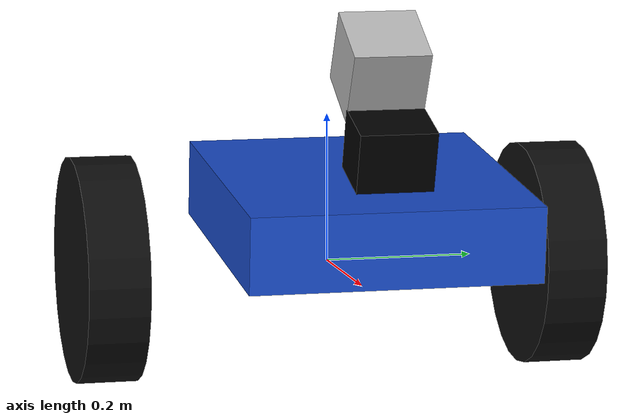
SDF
<?xml version="1.0" ?>
<sdf version="1.9">
  <model name="lane_following_robot">
    <link name="base_link">
      <pose>0 0 0.05 0 0 0</pose>
      <inertial>
        <mass>1.0</mass>
        <inertia>
          <ixx>0.001</ixx>
          <iyy>0.001</iyy>
          <izz>0.001</izz>
        </inertia>
      </inertial>
      <collision name="collision">
        <geometry>
          <box>
            <size>0.2 0.2 0.1</size>
          </box>
        </geometry>
      </collision>
      <visual name="visual">
        <geometry>
          <box>
            <size>0.2 0.2 0.1</size>
          </box>
        </geometry>
        <material>
          <ambient>0.2 0.2 0.2 1</ambient>
          <diffuse>0.2 0.2 0.2 1</diffuse>
        </material>
      </visual>
    </link>

    <!-- Side panels with wheel cutouts -->
    <visual name="left_side_panel">
      <pose>0 0.3 0 0 0 0</pose>
      <geometry>
        <box>
          <size>0.8 0.02 0.2</size>
        </box>
      </geometry>
      <material>
        <ambient>0.1 0.3 0.8 1</ambient>
        <diffuse>0.1 0.3 0.8 1</diffuse>
        <specular>0.5 0.5 0.5 1</specular>
        <metalness>0.8</metalness>
        <roughness>0.2</roughness>
      </material>
    </visual>

    <visual name="right_side_panel">
      <pose>0 -0.3 0 0 0 0</pose>
      <geometry>
        <box>
          <size>0.8 0.02 0.2</size>
        </box>
      </geometry>
      <material>
        <ambient>0.1 0.3 0.8 1</ambient>
        <diffuse>0.1 0.3 0.8 1</diffuse>
        <specular>0.5 0.5 0.5 1</specular>
        <metalness>0.8</metalness>
        <roughness>0.2</roughness>
      </material>
    </visual>

    <link name="hood_link">
      <pose>0.2 0 0.1 0 0.1 0</pose>
      <inertial>
        <mass>2.0</mass>
        <inertia>
          <ixx>0.1</ixx>
          <ixy>0</ixy>
          <ixz>0</ixz>
          <iyy>0.1</iyy>
          <iyz>0</iyz>
          <izz>0.1</izz>
        </inertia>
      </inertial>
      <visual name="hood_visual">
        <geometry>
          <box>
            <size>0.4 0.38 0.1</size>
          </box>
        </geometry>
        <material>
          <ambient>0.1 0.3 0.8 1</ambient>
          <diffuse>0.1 0.3 0.8 1</diffuse>
          <specular>0.5 0.5 0.5 1</specular>
          <metalness>0.8</metalness>
          <roughness>0.2</roughness>
        </material>
      </visual>
      <collision name="hood_collision">
        <geometry>
          <box>
            <size>0.4 0.38 0.1</size>
          </box>
        </geometry>
      </collision>
    </link>

    <link name="left_wheel">
      <pose>0 0.31 0 1.5708 0 0</pose>
      <inertial>
        <mass>2.0</mass>
        <inertia>
          <ixx>0.02</ixx>
          <ixy>0</ixy>
          <ixz>0</ixz>
          <iyy>0.02</iyy>
          <iyz>0</iyz>
          <izz>0.04</izz>
        </inertia>
      </inertial>
      <visual name="wheel_visual">
        <geometry>
          <cylinder>
            <radius>0.15</radius>
            <length>0.08</length>
          </cylinder>
        </geometry>
        <material>
          <ambient>0.1 0.1 0.1 1</ambient>
          <diffuse>0.1 0.1 0.1 1</diffuse>
          <specular>0.1 0.1 0.1 1</specular>
          <metalness>0.5</metalness>
          <roughness>0.8</roughness>
        </material>
      </visual>
      <visual name="tire_tread">
        <geometry>
          <cylinder>
            <radius>0.152</radius>
            <length>0.082</length>
          </cylinder>
        </geometry>
        <material>
          <ambient>0.05 0.05 0.05 1</ambient>
          <diffuse>0.05 0.05 0.05 1</diffuse>
          <specular>0.1 0.1 0.1 1</specular>
          <metalness>0.0</metalness>
          <roughness>1.0</roughness>
        </material>
      </visual>
      <collision name="wheel_collision">
        <geometry>
          <cylinder>
            <radius>0.15</radius>
            <length>0.08</length>
          </cylinder>
        </geometry>
        <surface>
          <friction>
            <ode>
              <mu>1.0</mu>
              <mu2>1.0</mu2>
              <fdir1>0 0 1</fdir1>
              <slip1>0.0</slip1>
              <slip2>0.0</slip2>
            </ode>
          </friction>
          <contact>
            <ode>
              <min_depth>0.005</min_depth>
              <kp>1e6</kp>
              <kd>100</kd>
            </ode>
          </contact>
        </surface>
      </collision>
    </link>

    <link name="right_wheel">
      <pose>0 -0.31 0 1.5708 0 0</pose>
      <inertial>
        <mass>2.0</mass>
        <inertia>
          <ixx>0.02</ixx>
          <ixy>0</ixy>
          <ixz>0</ixz>
          <iyy>0.02</iyy>
          <iyz>0</iyz>
          <izz>0.04</izz>
        </inertia>
      </inertial>
      <visual name="wheel_visual">
        <geometry>
          <cylinder>
            <radius>0.15</radius>
            <length>0.08</length>
          </cylinder>
        </geometry>
        <material>
          <ambient>0.1 0.1 0.1 1</ambient>
          <diffuse>0.1 0.1 0.1 1</diffuse>
          <specular>0.1 0.1 0.1 1</specular>
          <metalness>0.5</metalness>
          <roughness>0.8</roughness>
        </material>
      </visual>
      <visual name="tire_tread">
        <geometry>
          <cylinder>
            <radius>0.152</radius>
            <length>0.082</length>
          </cylinder>
        </geometry>
        <material>
          <ambient>0.05 0.05 0.05 1</ambient>
          <diffuse>0.05 0.05 0.05 1</diffuse>
          <specular>0.1 0.1 0.1 1</specular>
          <metalness>0.0</metalness>
          <roughness>1.0</roughness>
        </material>
      </visual>
      <collision name="wheel_collision">
        <geometry>
          <cylinder>
            <radius>0.15</radius>
            <length>0.08</length>
          </cylinder>
        </geometry>
        <surface>
          <friction>
            <ode>
              <mu>1.0</mu>
              <mu2>1.0</mu2>
              <fdir1>0 0 1</fdir1>
              <slip1>0.0</slip1>
              <slip2>0.0</slip2>
            </ode>
          </friction>
          <contact>
            <ode>
              <min_depth>0.005</min_depth>
              <kp>1e6</kp>
              <kd>100</kd>
            </ode>
          </contact>
        </surface>
      </collision>
    </link>

    <link name="camera_link">
      <pose>0.3 0 0.3 0 0.5 0</pose>
      <inertial>
        <mass>0.1</mass>
        <inertia>
          <ixx>0.000166667</ixx>
          <iyy>0.000166667</iyy>
          <izz>0.000166667</izz>
        </inertia>
      </inertial>
      <visual name="camera_visual">
        <geometry>
          <box>
            <size>0.1 0.1 0.1</size>
          </box>
        </geometry>
      </visual>
      <sensor name="camera_sensor" type="camera">
        <camera>
          <horizontal_fov>1.047</horizontal_fov>
          <image>
            <width>640</width>
            <height>480</height>
            <format>R8G8B8</format>
          </image>
          <clip>
            <near>0.1</near>
            <far>100</far>
          </clip>
        </camera>
        <always_on>1</always_on>
        <update_rate>30</update_rate>
        <visualize>true</visualize>
        <plugin
          filename="gz-sim-sensors-system"
          name="gz::sim::systems::Sensors">
          <render_engine>ogre2</render_engine>
        </plugin>
        <topic>camera</topic>
      </sensor>
    </link>

    <link name="camera_link_2">
      <pose>0.35 0 0.2 0 0.3 0</pose>
      <inertial>
        <mass>0.1</mass>
        <inertia>
          <ixx>0.0001</ixx>
          <ixy>0</ixy>
          <ixz>0</ixz>
          <iyy>0.0001</iyy>
          <iyz>0</iyz>
          <izz>0.0001</izz>
        </inertia>
      </inertial>
      <visual name="camera_visual_2">
        <geometry>
          <box>
            <size>0.08 0.1 0.08</size>
          </box>
        </geometry>
        <material>
          <ambient>0 0 0 1</ambient>
          <diffuse>0 0 0 1</diffuse>
          <specular>0.1 0.1 0.1 1</specular>
          <metalness>0.8</metalness>
          <roughness>0.3</roughness>
        </material>
      </visual>
      <sensor name="camera" type="camera">
        <camera>
          <horizontal_fov>1.0472</horizontal_fov>
          <image>
            <width>640</width>
            <height>480</height>
            <format>R8G8B8</format>
          </image>
          <clip>
            <near>0.02</near>
            <far>300</far>
          </clip>
          <noise>
            <type>gaussian</type>
            <mean>0.0</mean>
            <stddev>0.007</stddev>
          </noise>
        </camera>
        <always_on>1</always_on>
        <update_rate>30</update_rate>
        <visualize>true</visualize>
        <topic>camera/image_raw</topic>
      </sensor>
    </link>

    <!-- Paint Actuator -->
    <link name="paint_actuator">
      <pose>0 0 0.01 0 0 0</pose>
      <inertial>
        <mass>0.1</mass>
        <inertia>
          <ixx>0.0001</ixx>
          <iyy>0.0001</iyy>
          <izz>0.0001</izz>
        </inertia>
      </inertial>
      <visual name="visual">
        <geometry>
          <cylinder>
            <radius>0.01</radius>
            <length>0.02</length>
          </cylinder>
        </geometry>
        <material>
          <ambient>0.8 0.0 0.0 1</ambient>
          <diffuse>0.8 0.0 0.0 1</diffuse>
        </material>
      </visual>
    </link>

    <joint name="hood_joint" type="fixed">
      <parent>base_link</parent>
      <child>hood_link</child>
    </joint>

    <joint name="left_wheel_joint" type="revolute">
      <parent>base_link</parent>
      <child>left_wheel</child>
      <axis>
        <xyz>0 0 1</xyz>
        <limit>
          <lower>-1e+16</lower>
          <upper>1e+16</upper>
        </limit>
        <dynamics>
          <damping>0.01</damping>
          <friction>0.01</friction>
          <spring_reference>0</spring_reference>
          <spring_stiffness>0</spring_stiffness>
        </dynamics>
      </axis>
    </joint>

    <joint name="right_wheel_joint" type="revolute">
      <parent>base_link</parent>
      <child>right_wheel</child>
      <axis>
        <xyz>0 0 1</xyz>
        <limit>
          <lower>-1e+16</lower>
          <upper>1e+16</upper>
        </limit>
        <dynamics>
          <damping>0.01</damping>
          <friction>0.01</friction>
          <spring_reference>0</spring_reference>
          <spring_stiffness>0</spring_stiffness>
        </dynamics>
      </axis>
    </joint>

    <joint name="camera_joint" type="fixed">
      <parent>base_link</parent>
      <child>camera_link</child>
    </joint>

    <joint name="camera_joint_2" type="fixed">
      <parent>hood_link</parent>
      <child>camera_link_2</child>
    </joint>

    <joint name="paint_joint" type="fixed">
      <parent>base_link</parent>
      <child>paint_actuator</child>
      <pose>0 0 -0.05 0 0 0</pose>
    </joint>

    <plugin filename="gz-sim-diff-drive-system"
            name="gz::sim::systems::DiffDrive">
      <left_joint>left_wheel_joint</left_joint>
      <right_joint>right_wheel_joint</right_joint>
      <wheel_separation>0.62</wheel_separation>
      <wheel_radius>0.15</wheel_radius>
      <odom_publish_frequency>10</odom_publish_frequency>
      <topic>cmd_vel</topic>
    </plugin>
  </model>
</sdf>
